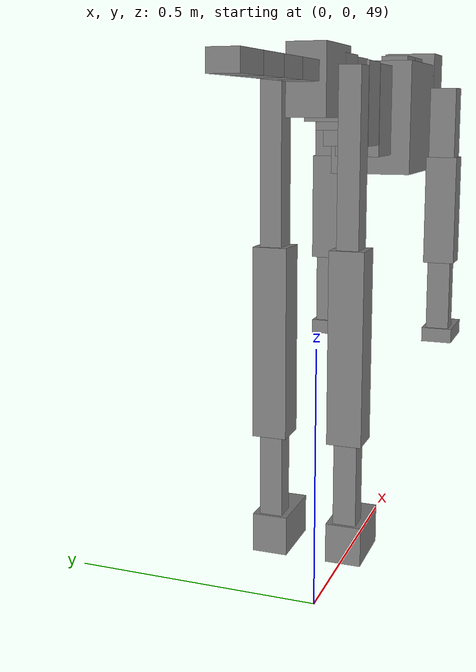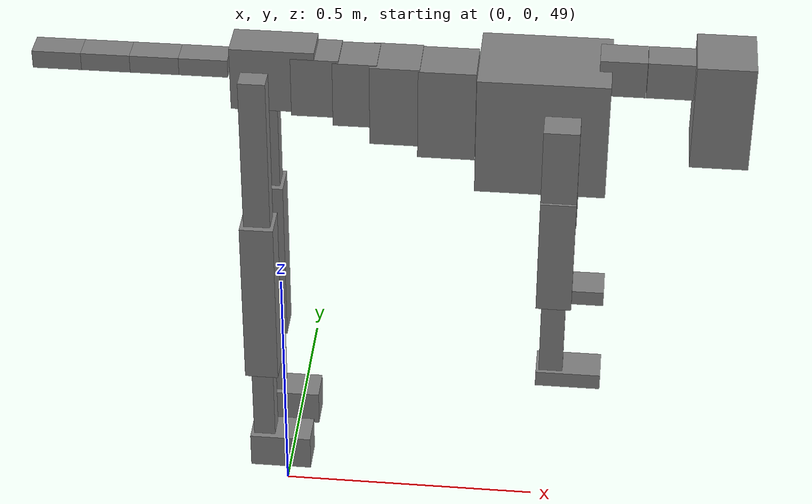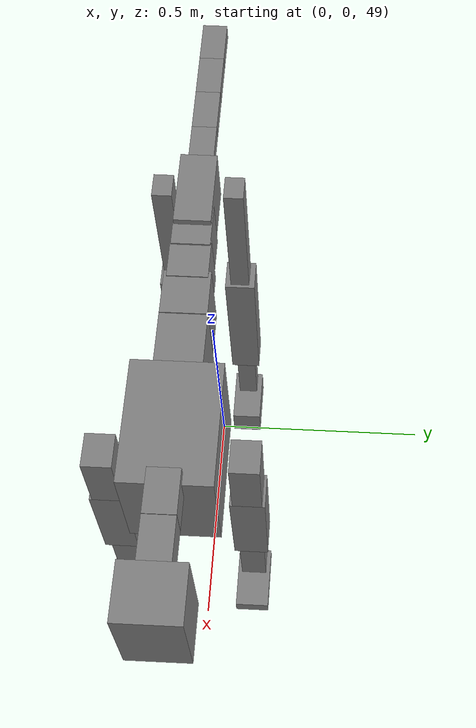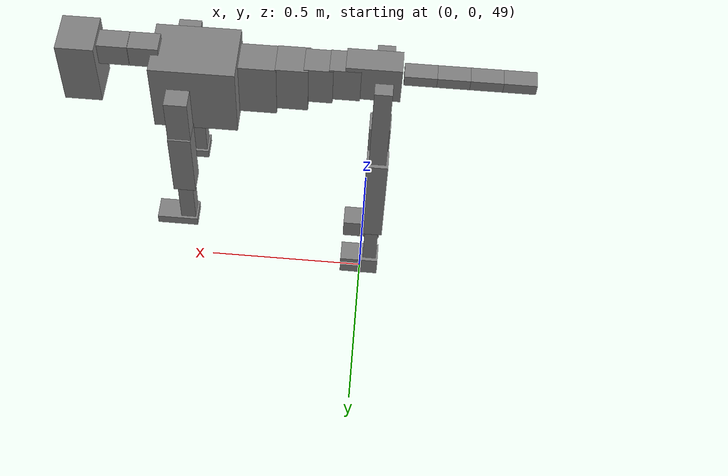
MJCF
<mujoco model="dog">

    <default>
        <joint armature="0.02" stiffness="1" damping="0.2" limited="true"/>
        <geom condim="3" friction="1 0.05 0.05" margin="0.01"/>
        <motor ctrllimited="true" ctrlrange="-1.0 1.0" forcelimited="true" gear="50"/>
    </default>

    <compiler inertiafromgeom="true" angle="radian"/>

    <option timestep="0.016" iterations="50" tolerance="1e-10" solver="Newton" jacobian="dense" cone="pyramidal"/>

    <size nconmax="20000" njmax="60000" nstack="5000000"/>
    <visual>
        <map force="0.1" zfar="30"/>
        <rgba haze="0.15 0.25 0.35 1"/>
        <quality shadowsize="2048"/>
        <global offwidth="800" offheight="800"/>
    </visual>

    <asset>
        <texture type="skybox" builtin="gradient" rgb1="0.3 0.5 0.7" rgb2="0 0 0" width="512" height="512"/>
        <texture name="texplane" type="2d" builtin="checker" rgb1=".2 .3 .4" rgb2=".1 0.15 0.2" width="512" height="512"
                 mark="cross" markrgb=".8 .8 .8"/>
        <texture name="texgeom" type="cube" builtin="flat" mark="cross" width="127" height="1278" rgb1="0.8 0.6 0.4"
                 rgb2="0.8 0.6 0.4" markrgb="1 1 1" random="0.01"/>

        <material name="matplane" reflectance="0.3" texture="texplane" texrepeat="1 1" texuniform="true"/>
        <material name="matgeom" texture="texgeom" texuniform="true" rgba="0.8 0.6 .4 1"/>
    </asset>

    <worldbody>
        <geom name="floor" pos="0 0 0" size="0 0 .25" type="plane" material="matplane" condim="3"/>

        <light directional="false" diffuse=".2 .2 .2" specular="0 0 0" pos="0 0 5" dir="0 0 -1" castshadow="false"/>
        <light mode="targetbodycom" target="torso" directional="false" diffuse=".8 .8 .8" specular="0.3 0.3 0.3"
               pos="0 0 4.0" dir="0 0 -1"/>

        <body name="root" pos="0 0 50">
            <freejoint name="root_1"/>
            <geom type="box" pos="0 0 -0.02" size="0.0774  0.0358  0.063" density="2030"/>

            <body name="spine1" pos="0.054 0 0">
                <joint name="spine1_y" axis="0 1 0" range="0 0.7" limited="true"/>
                <geom type="box" pos="0.02375 0 -0.03" size="0.04375  0.0375  0.05985" density="2030"/>

                <body name="spine2" pos="0.0612 0 0">
                    <joint name="spine2_y" axis="0 1 0" range="-0.15 0.15" limited="true"/>
                    <geom type="box" pos="0.03555  0  -0.04" size="0.04055  0.039  0.06615" density="2030"/>

                    <body name="spine3" pos="0.0730 0 0">
                        <joint name="spine3_y" axis="0 1 0" range="-0.15 0.15" limited="true"/>
                        <geom type="box" pos="0.03555  0  -0.057" size="0.04555  0.0445  0.081" density="2030"/>

                        <body name="spine4" pos="0.0780 0 0">
                            <joint name="spine4_y" axis="0 1 0" range="-0.15 0.15" limited="true"/>
                            <geom type="box" pos="0.05265  0  -0.07" size="0.05265  0.045  0.09135" density="2030"/>

                            <body name="torso" pos="0.1082 0 0">
                                <joint name="torso_y" axis="0 1 0" range="-0.15 0.15" limited="true"/>
                                <geom type="box" pos="0.11925  0  -0.085" size="0.11925  0.085  0.11745"
                                      density="2030"/>

                                <body name="neck1" pos="0.2160  0   0.0180">
                                    <joint name="neck1_y" axis="0 1 0" range="-1.2  -1" limited="true"/>
                                    <geom type="box" pos="0.0423  0  0" size="0.0423  0.03  0.036" density="2325"/>

                                    <body name="neck2" pos="0.0853  0  0">
                                        <joint name="neck2_y" axis="0 1 0" range="0.1  0" limited="true"/>
                                        <geom type="box" pos="0.0423  0  0" size="0.0423  0.03  0.036" density="2325"/>

                                        <body name="head" pos="0.0853  0  0">
                                            <joint name="head_y" axis="0 1 0" range="-0.3  -0.2" limited="true"/>
                                            <geom type="box" pos="0.0531  0  -0.055" size="0.0531  0.06  0.1044"
                                                  density="4030"/>

                                        </body>
                                    </body>
                                </body>

                                <body name="front_shoulder" pos="0.156  0   -0.0480">
                                    <joint name="front_shoulder_y" axis="0 1 0" range="-1 1.5" limited="true"/>
                                    <geom type="box" pos="0 0.13 -0.0612" size="0.0324  0.0277  0.0878" density="1158"/>
                                    <geom type="box" pos="0 -0.13 -0.0612" size="0.0324  0.0277  0.0878"
                                          density="1158"/>

                                    <body name="front_elbow" pos="0  0  -0.1223">
                                        <joint name="front_elbow_y" axis="0 1 0" range="-2 0" limited="true"/>
                                        <geom type="box" pos="0 0.13 -0.1169" size="0.0325  0.0332  0.1169"
                                              density="1081"/>
                                        <geom type="box" pos="0 -0.13 -0.1169" size="0.0325  0.0332  0.1169"
                                              density="1081"/>

                                        <body name="front_wrist" pos="0  0  -0.2338">
                                            <joint name="front_wrist_y" axis="0 1 0" range="-0.2 0" limited="true"/>
                                            <geom type="box" pos="0 0.13 -0.0827" size="0.0223  0.0248  0.0958"
                                                  density="1664"/>
                                            <geom type="box" pos="0 -0.13 -0.0827" size="0.0223  0.0248  0.0958"
                                                  density="1664"/>

                                            <body name="front_finger_end" pos="0  0  -0.1653">
                                                <joint name="front_finger_y" axis="0 1 0" range="-0.4 1"
                                                       limited="true"/>
                                                <geom type="box" pos="0.0331  0.13  -0.0007"
                                                      size="0.0606  0.0331  0.0157" density="1515"/>
                                                <geom type="box" pos="0.0331  -0.13  -0.0007"
                                                      size="0.0606  0.0331  0.0157" density="1515"/>

                                            </body>

                                        </body>
                                    </body>
                                </body>

                            </body>
                        </body>
                    </body>
                </body>
            </body>

            <body name="back_hip" pos="-0.03 0 -0.018">
                <joint name="back_hip_y" axis="0 1 0" range="-1.5 0.3" limited="true"/>
                <geom type="box" pos="0 0.07 -0.1530" size="0.0251  0.0197  0.1758" density="1154"/>
                <geom type="box" pos="0 -0.07 -0.1530" size="0.0251  0.0197  0.1758" density="1154"/>

                <body name="back_knee" pos="0  0  -0.3060">
                    <joint name="back_knee_y" axis="0 1 0" range="0 2.8" limited="true"/>
                    <geom type="box" pos="0 0.07 -0.1586" size="0.0319  0.0315  0.1742" density="1227"/>
                    <geom type="box" pos="0 -0.07 -0.1586" size="0.0319  0.0315  0.1742" density="1227"/>

                    <body name="back_ankle" pos="0  0  -0.3173">
                        <joint name="back_ankle_y" axis="0 1 0" range="-2.2 0" limited="true"/>
                        <geom type="box" pos="0 0.07 -0.0914" size="0.0209  0.0209  0.1027" density="1284"/>
                        <geom type="box" pos="0 -0.07 -0.0914" size="0.0209  0.0209  0.1027" density="1284"/>

                        <body name="back_toe_end" pos="0  0  -0.1829">
                            <joint name="back_toe_y" axis="0 1 0" range="-0.4 1" limited="true"/>
                            <geom type="box" pos="0.0325  0.07  -0.0212" size="0.0596  0.0325  0.0362" density="1515"/>
                            <geom type="box" pos="0.0325  -0.07  -0.0212" size="0.0596  0.0325  0.0362" density="1515"/>

                        </body>
                    </body>
                </body>
            </body>

            <body name="tail1" pos="-0.074 0 -0.006">
                <joint name="tail1_y" axis="0 1 0" range="-0.2 0.2" limited="true"/>
                <geom type="box" pos="-0.0536  0  0" size="0.045  0.025  0.0175" density="1587"/>

                <body name="tail2" pos="-0.09 0 0">
                    <joint name="tail2_y" axis="0 1 0" range="-0.2 0.2" limited="true"/>
                    <geom type="box" pos="-0.0536  0  0" size="0.045  0.025  0.0175" density="1587"/>

                    <body name="tail3" pos="-0.09 0 0">
                        <joint name="tail3_y" axis="0 1 0" range="-0.2 0.2" limited="true"/>
                        <geom type="box" pos="-0.0536  0  0" size="0.045  0.025  0.0175" density="1587"/>

                        <body name="tail4" pos="-0.09 0 0">
                            <joint name="tail4_y" axis="0 1 0" range="-0.2 0.2" limited="true"/>
                            <geom type="box" pos="-0.0536  0  0" size="0.045  0.025  0.0175" density="1587"/>

                        </body>
                    </body>
                </body>
            </body>
        </body>
    </worldbody>

    <actuator>
        <motor joint="spine1_y" forcerange="-150 150     "/>
        <motor joint="spine2_y" forcerange="-150 150     "/>
        <motor joint="spine3_y" forcerange="-150 150     "/>
        <motor joint="spine4_y" forcerange="-150 150     "/>
        <motor joint="torso_y" forcerange="-150 150     "/>
        <motor joint="neck1_y" forcerange="-100 100       "/>
        <motor joint="neck2_y" forcerange="-100 100       "/>
        <motor joint="head_y" forcerange="-150 150       "/>
        <motor joint="front_shoulder_y" forcerange="-123.79 160.60"/>
        <motor joint="front_elbow_y" forcerange="-190.53 151.03"/>
        <motor joint="front_wrist_y" forcerange="-99.74 98.56"/>
        <motor joint="front_finger_y" forcerange="-70.72 65.61"/>
        <motor joint="back_hip_y" forcerange="-217.44 245.30"/>
        <motor joint="back_knee_y" forcerange="-285.65 371.97"/>
        <motor joint="back_angle_y" forcerange="-144.51 89.81"/>
        <motor joint="back_toe_y" forcerange="-87.29 92.80"/>
        <motor joint="tail1_y" forcerange="-50 50     "/>
        <motor joint="tail2_y" forcerange="-50 50     "/>
        <motor joint="tail3_y" forcerange="-50 50     "/>
        <motor joint="tail4_y" forcerange="-50 50     "/>
    </actuator>
</mujoco>
